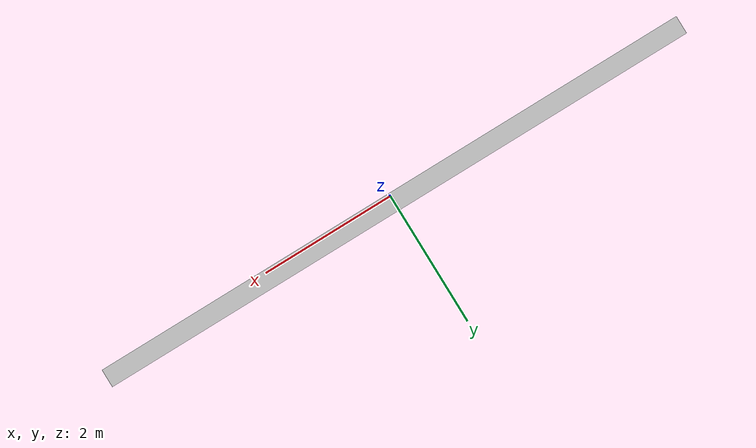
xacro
<?xml version="1.0" ?>
<robot name="urdf_angkor_midd" xmlns:xacro="http://www.ros.org/wiki/xacro">

<xacro:include filename="$(find urdf_angkor_midd_description)/urdf/materials.xacro" />
<xacro:include filename="$(find urdf_angkor_midd_description)/urdf/urdf_angkor_midd.trans" />
<xacro:include filename="$(find urdf_angkor_midd_description)/urdf/urdf_angkor_midd.gazebo" />
<link name="base_link">
  <inertial>
    <origin xyz="0.0 0.1 0.0" rpy="0 0 0"/>
    <mass value="72596.8"/>
    <inertia ixx="279981.658667" iyy="559479.338667" izz="279981.658667" ixy="0.0" iyz="0.0" ixz="-0.0"/>
  </inertial>
  <visual>
    <origin xyz="0 0 0" rpy="0 0 0"/>
    <geometry>
      <mesh filename="package://urdf_angkor_midd_description/meshes/base_link.stl" scale="0.001 0.001 0.001"/>
    </geometry>
    <material name="silver"/>
  </visual>
  <collision>
    <origin xyz="0 0 0" rpy="0 0 0"/>
    <geometry>
      <mesh filename="package://urdf_angkor_midd_description/meshes/base_link.stl" scale="0.001 0.001 0.001"/>
    </geometry>
  </collision>
</link>

</robot>

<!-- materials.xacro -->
<robot name="urdf_angkor_midd" xmlns:xacro="http://www.ros.org/wiki/xacro" >

<material name="silver">
  <color rgba="0.700 0.700 0.700 1.000"/>
</material>

</robot>

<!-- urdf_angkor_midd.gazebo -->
<robot name="urdf_angkor_midd" xmlns:xacro="http://www.ros.org/wiki/xacro" >

<xacro:property name="body_color" value="Gazebo/Silver" />

<gazebo>
  <plugin name="control" filename="libgazebo_ros_control.so"/>
</gazebo>
<gazebo reference="base_link">
  <material>${body_color}</material>
  <mu1>0.2</mu1>
  <mu2>0.2</mu2>
  <selfCollide>true</selfCollide>
  <gravity>true</gravity>
</gazebo>

</robot>
